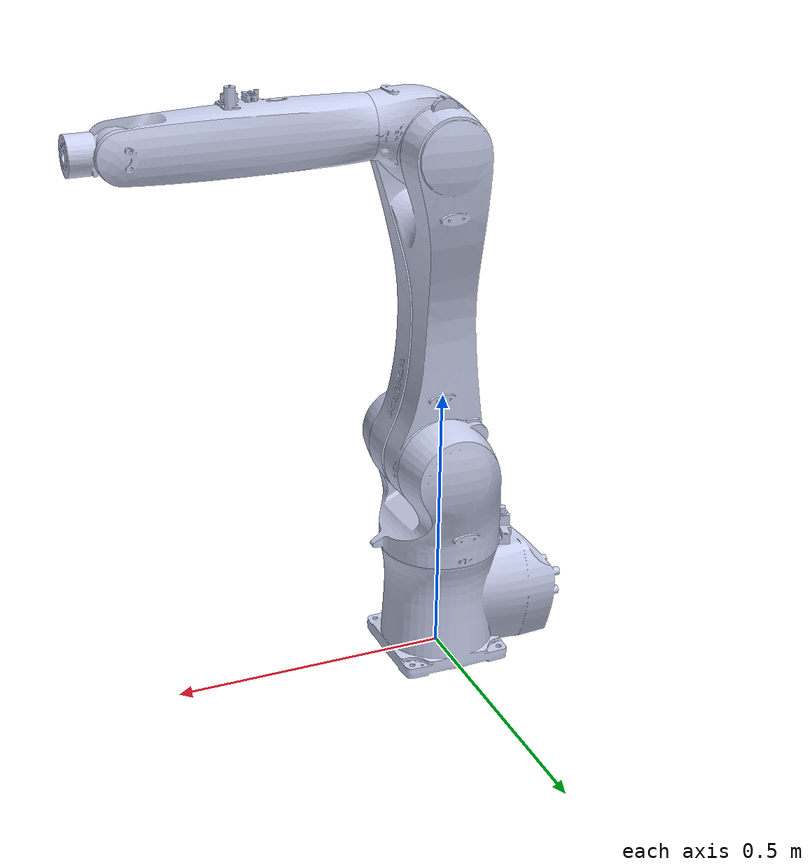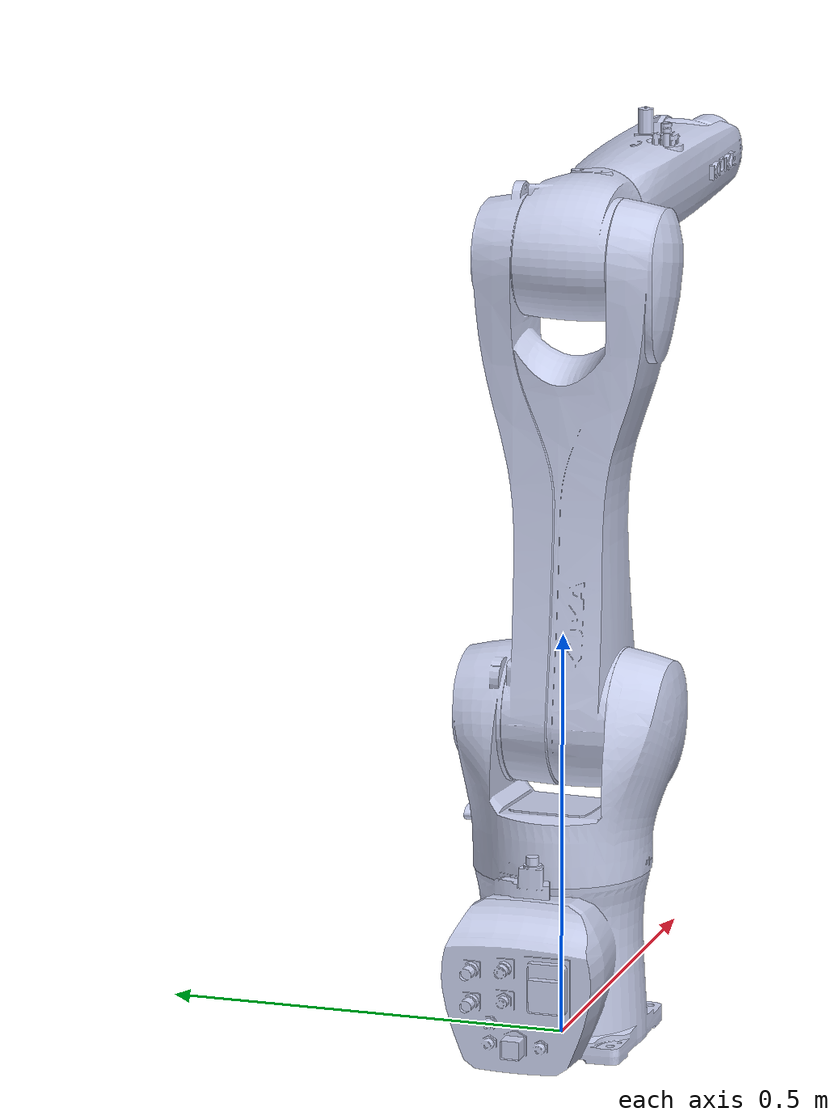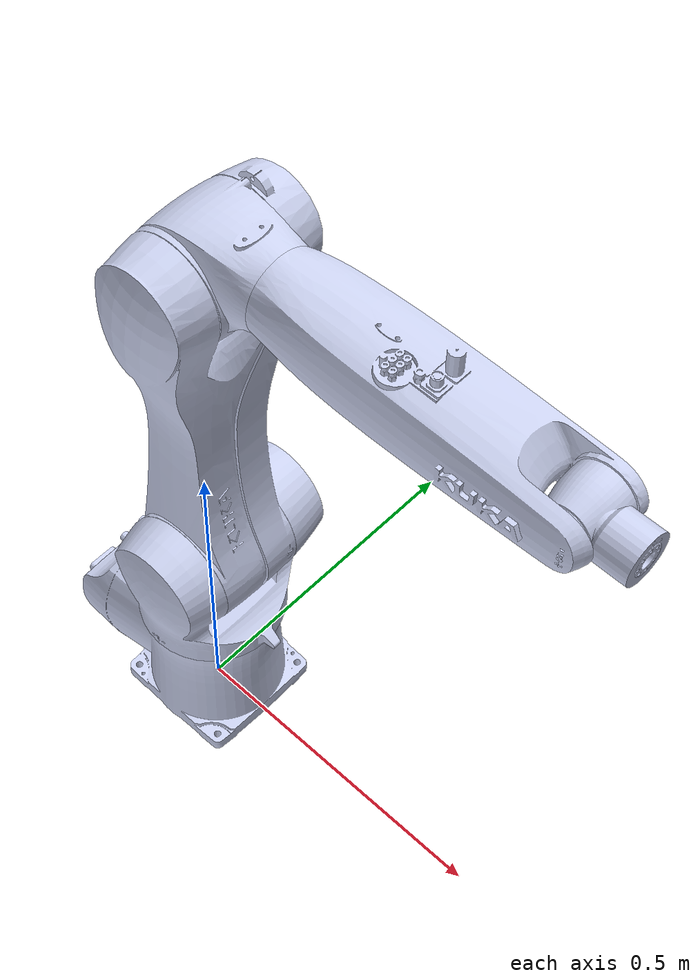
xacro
<?xml version="1.0" encoding="utf-8"?>
<robot name="kuka_kr10_urdf" xmlns:xacro="http://ros.org/wiki/xacro">

  <!-- Used for fixing robot to Gazebo 'base_link' -->
  <link name="world"/>

  <joint name="fixed" type="fixed">
    <parent link="world"/>
    <child link="base_link"/>
  </joint>

  <link
    name="base_link">
    <inertial>
      <origin
        xyz="-0.044481 -5.0058E-05 0.10609"
        rpy="0 0 0" />
      <mass
        value="10.507" />
      <inertia
        ixx="0.066671" ixy="-9.8524E-05" ixz="-0.0011313" iyy="0.10732" iyz="-1.7052E-05" izz="0.094826" />
    </inertial>
    <visual>
      <origin
        xyz="0 0 0"
        rpy="0 0 0" />
      <geometry>
        <mesh
          filename="package://kuka_kr10_urdf/meshes/base_link.STL" />
      </geometry>
      <material
        name="">
        <color
          rgba="0.79216 0.81961 0.93333 1" />
      </material>
    </visual>
    <collision>
      <origin
        xyz="0 0 0"
        rpy="0 0 0" />
      <geometry>
        <mesh
          filename="package://kuka_kr10_urdf/meshes/base_link.STL" />
      </geometry>
    </collision>
  </link>
  <link
    name="Link_1">
    <inertial>
      <origin
        xyz="0.00796588282256565 0.00201742612994055 0.115716194551813"
        rpy="0 0 0" />
      <mass
        value="6.2752263325597" />
      <inertia
        ixx="0.0762046052454029" ixy="1.04764644326236E-05" ixz="-0.00530114994506598" iyy="0.0500774365599559" iyz="-0.000516536616616264" izz="0.0562676606189768" />
    </inertial>
    <visual>
      <origin
        xyz="0 0 0"
        rpy="0 0 0" />
      <geometry>
        <mesh
          filename="package://kuka_kr10_urdf/meshes/Link_1.STL" />
      </geometry>
      <material
        name="">
        <color
          rgba="0.792156862745098 0.819607843137255 0.933333333333333 1" />
      </material>
    </visual>
    <collision>
      <origin
        xyz="0 0 0"
        rpy="0 0 0" />
      <geometry>
        <mesh
          filename="package://kuka_kr10_urdf/meshes/Link_1.STL" />
      </geometry>
    </collision>
  </link>
  <joint
    name="Joint_1"
    type="continuous">
    <origin
      xyz="0 0 0.213"
      rpy="0 0 0" />
    <parent
      link="base_link" />
    <child
      link="Link_1" />
    <axis
      xyz="0 0 1" />
    <limit effort="100.0" lower="${radians(-170)}" upper="${radians(170)}" velocity="3.0"/>
  </joint>
  <link
    name="Link_2">
    <inertial>
      <origin
        xyz="-0.0083425 -0.0044476 0.26096"
        rpy="0 0 0" />
      <mass
        value="10.062" />
      <inertia
        ixx="0.46054" ixy="0.00012557" ixz="0.0011636" iyy="0.44294" iyz="-0.0010075" izz="0.044695" />
    </inertial>
    <visual>
      <origin
        xyz="0 0 0"
        rpy="0 0 0" />
      <geometry>
        <mesh
          filename="package://kuka_kr10_urdf/meshes/Link_2.STL" />
      </geometry>
      <material
        name="">
        <color
          rgba="0.79216 0.81961 0.93333 1" />
      </material>
    </visual>
    <collision>
      <origin
        xyz="0 0 0"
        rpy="0 0 0" />
      <geometry>
        <mesh
          filename="package://kuka_kr10_urdf/meshes/Link_2.STL" />
      </geometry>
    </collision>
  </link>
  <joint
    name="Joint_2"
    type="continuous">
    <origin
      xyz="0.025 0 0.183"
      rpy="0 0.030324 0" />
    <parent
      link="Link_1" />
    <child
      link="Link_2" />
    <axis
      xyz="0 1 0" />
    <limit effort="100.0" lower="${radians(-190)}" upper="${radians(45)}" velocity="3.0"/>
  </joint>
  <link
    name="Link_3">
    <inertial>
      <origin
        xyz="0.01607 2.4742E-05 0.010478"
        rpy="0 0 0" />
      <mass
        value="2.8742" />
      <inertia
        ixx="0.0081773" ixy="5.2843E-07" ixz="-0.001403" iyy="0.011138" iyz="-3.9399E-06" izz="0.0098413" />
    </inertial>
    <visual>
      <origin
        xyz="0 0 0"
        rpy="0 0 0" />
      <geometry>
        <mesh
          filename="package://kuka_kr10_urdf/meshes/Link_3.STL" />
      </geometry>
      <material
        name="">
        <color
          rgba="0.79216 0.81961 0.93333 1" />
      </material>
    </visual>
    <collision>
      <origin
        xyz="0 0 0"
        rpy="0 0 0" />
      <geometry>
        <mesh
          filename="package://kuka_kr10_urdf/meshes/Link_3.STL" />
      </geometry>
    </collision>
  </link>
  <joint
    name="Joint_3"
    type="continuous">
    <origin
      xyz="0 0 0.56"
      rpy="0 -0.030324 0" />
    <parent
      link="Link_2" />
    <child
      link="Link_3" />
    <axis
      xyz="0 1 0" />
    <limit effort="100.0" lower="${radians(-120)}" upper="${radians(156)}" velocity="3.0"/>
  </joint>
  <link
    name="Link_4">
    <inertial>
      <origin
        xyz="0.195135071129115 -0.000495676139749157 0.000329967769836514"
        rpy="0 0 0" />
      <mass
        value="4.03663145228616" />
      <inertia
        ixx="0.00730922398336463" ixy="0.000159842043039673" ixz="1.65930077842008E-05" iyy="0.050510947187081" iyz="1.2870678239384E-05" izz="0.0514268011742754" />
    </inertial>
    <visual>
      <origin
        xyz="0 0 0"
        rpy="0 0 0" />
      <geometry>
        <mesh
          filename="package://kuka_kr10_urdf/meshes/Link_4.STL" />
      </geometry>
      <material
        name="">
        <color
          rgba="0.792156862745098 0.819607843137255 0.933333333333333 1" />
      </material>
    </visual>
    <collision>
      <origin
        xyz="0 0 0"
        rpy="0 0 0" />
      <geometry>
        <mesh
          filename="package://kuka_kr10_urdf/meshes/Link_4.STL" />
      </geometry>
    </collision>
  </link>
  <joint
    name="Joint_4"
    type="continuous">
    <origin
      xyz="0.10698 0 0.035"
      rpy="0 0 0" />
    <parent
      link="Link_3" />
    <child
      link="Link_4" />
    <axis
      xyz="1 0 0" />
    <limit effort="100.0" lower="${radians(-185)}" upper="${radians(185)}" velocity="3.0"/>
  </joint>
  <link
    name="Link_5">
    <inertial>
      <origin
        xyz="0.016609 0.0018881 -2.9968E-05"
        rpy="0 0 0" />
      <mass
        value="0.44798" />
      <inertia
        ixx="0.0003228" ixy="1.7323E-05" ixz="3.1168E-07" iyy="0.00055318" iyz="3.2728E-07" izz="0.000587" />
    </inertial>
    <visual>
      <origin
        xyz="0 0 0"
        rpy="0 0 0" />
      <geometry>
        <mesh
          filename="package://kuka_kr10_urdf/meshes/Link_5.STL" />
      </geometry>
      <material
        name="">
        <color
          rgba="0.79216 0.81961 0.93333 1" />
      </material>
    </visual>
    <collision>
      <origin
        xyz="0 0 0"
        rpy="0 0 0" />
      <geometry>
        <mesh
          filename="package://kuka_kr10_urdf/meshes/Link_5.STL" />
      </geometry>
    </collision>
  </link>
  <joint
    name="Joint_5"
    type="continuous">
    <origin
      xyz="0.40802 0 0"
      rpy="0 0 0" />
    <parent
      link="Link_4" />
    <child
      link="Link_5" />
    <axis
      xyz="0 1 0" />
    <limit effort="100.0" lower="${radians(-120)}" upper="${radians(120)}" velocity="3.0"/>
  </joint>
  <link
    name="Link_6">
    <inertial>
      <origin
        xyz="0.00597810440147417 5.10702591327572E-15 4.33845548888367E-05"
        rpy="0 0 0" />
      <mass
        value="0.013916296749675" />
      <inertia
        ixx="3.00536975491689E-06" ixy="-4.34141304474807E-19" ixz="-5.47706612238767E-10" iyy="1.70742988099984E-06" iyz="-1.14708832938369E-18" izz="1.69800715833737E-06" />
    </inertial>
    <visual>
      <origin
        xyz="0 0 0"
        rpy="0 0 0" />
      <geometry>
        <mesh
          filename="package://kuka_kr10_urdf/meshes/Link_6.STL" />
      </geometry>
      <material
        name="">
        <color
          rgba="0.792156862745098 0.819607843137255 0.933333333333333 1" />
      </material>
    </visual>
    <collision>
      <origin
        xyz="0 0 0"
        rpy="0 0 0" />
      <geometry>
        <mesh
          filename="package://kuka_kr10_urdf/meshes/Link_6.STL" />
      </geometry>
    </collision>
  </link>
  <joint
    name="Joint_6"
    type="continuous">
    <origin
      xyz="0.0665 0 0"
      rpy="0 0 0" />
    <parent
      link="Link_5" />
    <child
      link="Link_6" />
    <axis
      xyz="1 0 0" />
    <limit effort="150.0" lower="${radians(-350)}" upper="${radians(350)}" velocity="3.0"/>
  </joint>

 <!-- Friction definition set to 1 -->
  <gazebo reference="base_link">
    <mu1>1</mu1>
    <mu2>1</mu2>
    <selfCollide>true</selfCollide>
  </gazebo>

  <gazebo reference="Link_1">
    <mu1>1</mu1>
    <mu2>1</mu2>
    <selfCollide>true</selfCollide>
  </gazebo>

  <gazebo reference="Link_2">
    <mu1>1</mu1>
    <mu2>1</mu2>
    <selfCollide>true</selfCollide>
  </gazebo>

  <gazebo reference="Link_3">
    <mu1>1</mu1>
    <mu2>1</mu2>
    <selfCollide>true</selfCollide>
  </gazebo>

  <gazebo reference="Link_4">
    <mu1>1</mu1>
    <mu2>1</mu2>
    <selfCollide>true</selfCollide>
  </gazebo>

  <gazebo reference="Link_5">
    <mu1>1</mu1>
    <mu2>1</mu2>
    <selfCollide>true</selfCollide>
  </gazebo>

  <gazebo reference="Link_6">
    <mu1>1</mu1>
    <mu2>1</mu2>
    <selfCollide>true</selfCollide>
  </gazebo>

 <!-- Transmissions -->
 <transmission name="trans_Joint_1">
        <type>transmission_interface/SimpleTransmission</type>
        <joint name="Joint_1">
            <hardwareInterface>hardware_interface/PositionJointInterface</hardwareInterface>
        </joint>
        <actuator name="Joint_1_motor">
            <hardwareInterface>hardware_interface/PositionJointInterface</hardwareInterface>
            <mechanicalReduction>1</mechanicalReduction>
        </actuator>
    </transmission>
    <transmission name="trans_Joint_2">
        <type>transmission_interface/SimpleTransmission</type>
        <joint name="Joint_2">
            <hardwareInterface>hardware_interface/PositionJointInterface</hardwareInterface>
        </joint>
        <actuator name="Joint_2_motor">
            <hardwareInterface>hardware_interface/PositionJointInterface</hardwareInterface>
            <mechanicalReduction>1</mechanicalReduction>
        </actuator>
    </transmission>
    <transmission name="trans_Joint_3">
        <type>transmission_interface/SimpleTransmission</type>
        <joint name="Joint_3">
            <hardwareInterface>hardware_interface/PositionJointInterface</hardwareInterface>
        </joint>
        <actuator name="Joint_3_motor">
            <hardwareInterface>hardware_interface/PositionJointInterface</hardwareInterface>
            <mechanicalReduction>1</mechanicalReduction>
        </actuator>
    </transmission>
    <transmission name="trans_Joint_4">
        <type>transmission_interface/SimpleTransmission</type>
        <joint name="Joint_4">
            <hardwareInterface>hardware_interface/PositionJointInterface</hardwareInterface>
        </joint>
        <actuator name="Joint_4_motor">
            <hardwareInterface>hardware_interface/PositionJointInterface</hardwareInterface>
            <mechanicalReduction>1</mechanicalReduction>
        </actuator>
    </transmission>
    <transmission name="trans_Joint_5">
        <type>transmission_interface/SimpleTransmission</type>
        <joint name="Joint_5">
            <hardwareInterface>hardware_interface/PositionJointInterface</hardwareInterface>
        </joint>
        <actuator name="Joint_5_motor">
            <hardwareInterface>hardware_interface/PositionJointInterface</hardwareInterface>
            <mechanicalReduction>1</mechanicalReduction>
        </actuator>
    </transmission>
    <transmission name="trans_Joint_6">
        <type>transmission_interface/SimpleTransmission</type>
        <joint name="Joint_6">
            <hardwareInterface>hardware_interface/PositionJointInterface</hardwareInterface>
        </joint>
        <actuator name="Joint_6_motor">
            <hardwareInterface>hardware_interface/PositionJointInterface</hardwareInterface>
            <mechanicalReduction>1</mechanicalReduction>
        </actuator>
    </transmission>

    <gazebo>
        <plugin name="gazebo_ros_control" filename="libgazebo_ros_control.so">
            <robotNamespace>/</robotNamespace>
        </plugin>
    </gazebo>

</robot>
